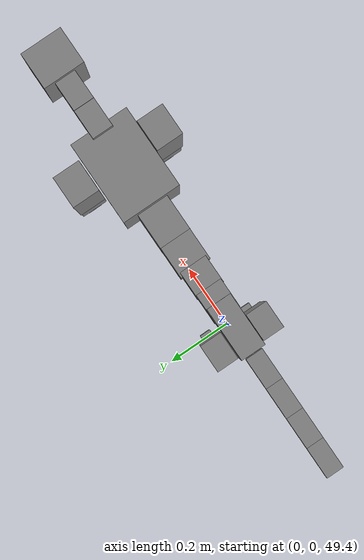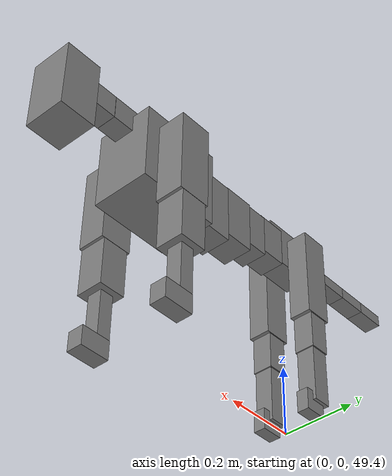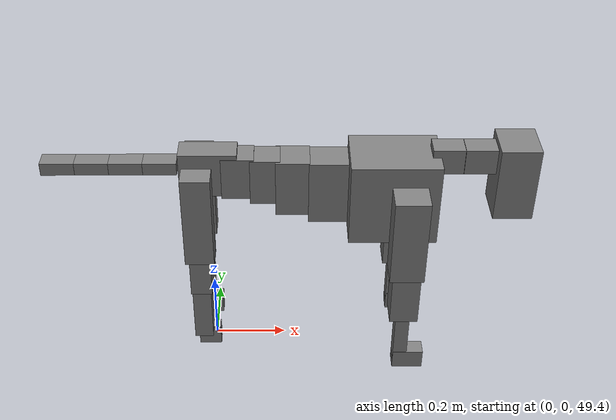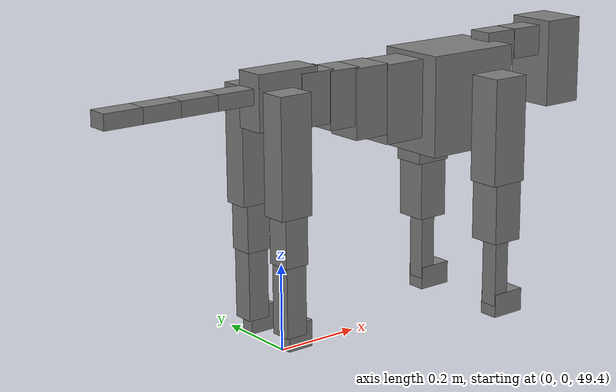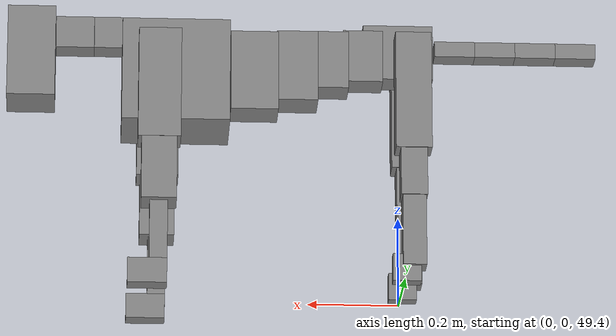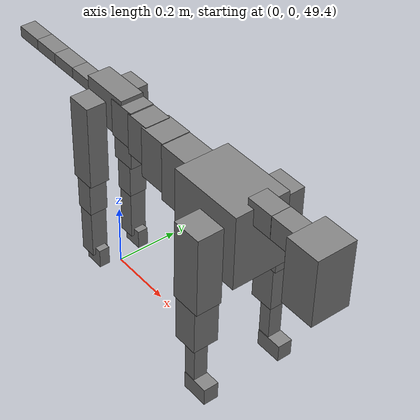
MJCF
<mujoco model="dog">

    <default>
        <joint armature="0.02" stiffness="1" damping="0.2" limited="true"/>
        <geom condim="3" friction="1 0.05 0.05" margin="0.01"/>
        <motor ctrllimited="true" ctrlrange="-1.0 1.0" forcelimited="true" gear="50"/>
    </default>

    <compiler inertiafromgeom="true" angle="radian"/>

    <option timestep="0.016" iterations="50" tolerance="1e-10" solver="Newton" jacobian="dense" cone="pyramidal"/>

    <size nconmax="20000" njmax="60000" nstack="5000000"/>
    <visual>
        <map force="0.1" zfar="30"/>
        <rgba haze="0.15 0.25 0.35 1"/>
        <quality shadowsize="2048"/>
        <global offwidth="800" offheight="800"/>
    </visual>

    <asset>
        <texture type="skybox" builtin="gradient" rgb1="0.3 0.5 0.7" rgb2="0 0 0" width="512" height="512"/>
        <texture name="texplane" type="2d" builtin="checker" rgb1=".2 .3 .4" rgb2=".1 0.15 0.2" width="512" height="512"
                 mark="cross" markrgb=".8 .8 .8"/>
        <texture name="texgeom" type="cube" builtin="flat" mark="cross" width="127" height="1278" rgb1="0.8 0.6 0.4"
                 rgb2="0.8 0.6 0.4" markrgb="1 1 1" random="0.01"/>

        <material name="matplane" reflectance="0.3" texture="texplane" texrepeat="1 1" texuniform="true"/>
        <material name="matgeom" texture="texgeom" texuniform="true" rgba="0.8 0.6 .4 1"/>
    </asset>

    <worldbody>
        <geom name="floor" pos="0 0 0" size="0 0 .25" type="plane" material="matplane" condim="3"/>

        <light directional="false" diffuse=".2 .2 .2" specular="0 0 0" pos="0 0 5" dir="0 0 -1" castshadow="false"/>
        <light mode="targetbodycom" target="torso" directional="false" diffuse=".8 .8 .8" specular="0.3 0.3 0.3"
               pos="0 0 4.0" dir="0 0 -1"/>

        <body name="root" pos="0 0 50">
            <freejoint name="root_1"/>
            <geom type="box" pos="0 0 -0.02" size="0.0774  0.0358  0.063" density="2030"/>

            <body name="spine1" pos="0.054 0 0">
                <joint name="spine1_y" axis="0 1 0" range="0 0.7" limited="true"/>
                <geom type="box" pos="0.02375 0 -0.03" size="0.04375  0.0375  0.05985" density="2030"/>

                <body name="spine2" pos="0.0612 0 0">
                    <joint name="spine2_y" axis="0 1 0" range="-0.15 0.15" limited="true"/>
                    <geom type="box" pos="0.03555  0  -0.04" size="0.04055  0.039  0.06615" density="2030"/>

                    <body name="spine3" pos="0.0730 0 0">
                        <joint name="spine3_y" axis="0 1 0" range="-0.15 0.15" limited="true"/>
                        <geom type="box" pos="0.03555  0  -0.057" size="0.04555  0.0445  0.081" density="2030"/>

                        <body name="spine4" pos="0.0780 0 0">
                            <joint name="spine4_y" axis="0 1 0" range="-0.15 0.15" limited="true"/>
                            <geom type="box" pos="0.05265  0  -0.07" size="0.05265  0.045  0.09135" density="2030"/>

                            <body name="torso" pos="0.1082 0 0">
                                <joint name="torso_y" axis="0 1 0" range="-0.15 0.15" limited="true"/>
                                <geom type="box" pos="0.11925  0  -0.085" size="0.11925  0.085  0.11745"
                                      density="2030"/>

                                <body name="neck1" pos="0.2160  0   0.0180">
                                    <joint name="neck1_y" axis="0 1 0" range="-1.2  -1" limited="true"/>
                                    <geom type="box" pos="0.0423  0  0" size="0.0423  0.03  0.036" density="2325"/>

                                    <body name="neck2" pos="0.0853  0  0">
                                        <joint name="neck2_y" axis="0 1 0" range="0.1  0" limited="true"/>
                                        <geom type="box" pos="0.0423  0  0" size="0.0423  0.03  0.036" density="2325"/>

                                        <body name="head" pos="0.0853  0  0">
                                            <joint name="head_y" axis="0 1 0" range="-0.3  -0.2" limited="true"/>
                                            <geom type="box" pos="0.0531  0  -0.055" size="0.0531  0.06  0.1044"
                                                  density="4030"/>

                                        </body>
                                    </body>
                                </body>

                                <body name="front_shoulder" pos="0.156  0   -0.0480">
                                    <joint name="front_shoulder_y" axis="0 1 0" range="-1 1.5" limited="true"/>
                                    <geom type="box" pos="0 0.13 -0.0990" size="0.0466  0.0399  0.1256" density="1158"/>
                                    <geom type="box" pos="0 -0.13 -0.0990" size="0.0466  0.0399  0.1256"
                                          density="1158"/>

                                    <body name="front_elbow" pos="0  0  -0.1979">
                                        <joint name="front_elbow_y" axis="0 1 0" range="-2 0" limited="true"/>
                                        <geom type="box" pos="0 0.13 -0.0839" size="0.0386  0.0394  0.0839"
                                              density="1081"/>
                                        <geom type="box" pos="0 -0.13 -0.0839" size="0.0386  0.0394  0.0839"
                                              density="1081"/>

                                        <body name="front_wrist" pos="0  0  -0.1678">
                                            <joint name="front_wrist_y" axis="0 1 0" range="-0.2 0" limited="true"/>
                                            <geom type="box" pos="0 0.13 -0.0736" size="0.0196  0.0218  0.0867"
                                                  density="1664"/>
                                            <geom type="box" pos="0 -0.13 -0.0736" size="0.0196  0.0218  0.0867"
                                                  density="1664"/>

                                            <body name="front_finger_end" pos="0  0  -0.1471">
                                                <joint name="front_finger_y" axis="0 1 0" range="-0.4 1"
                                                       limited="true"/>
                                                <geom type="box" pos="0.0233  0.13  -0.0128"
                                                      size="0.0427  0.0233  0.0278" density="1515"/>
                                                <geom type="box" pos="0.0233  -0.13  -0.0128"
                                                      size="0.0427  0.0233  0.0278" density="1515"/>

                                            </body>

                                        </body>
                                    </body>
                                </body>

                            </body>
                        </body>
                    </body>
                </body>
            </body>

            <body name="back_hip" pos="-0.03 0 -0.018">
                <joint name="back_hip_y" axis="0 1 0" range="-1.5 0.3" limited="true"/>
                <geom type="box" pos="0 0.07 -0.1119" size="0.0397  0.0312  0.1347" density="1154"/>
                <geom type="box" pos="0 -0.07 -0.1119" size="0.0397  0.0312  0.1347" density="1154"/>

                <body name="back_knee" pos="0  0  -0.2237">
                    <joint name="back_knee_y" axis="0 1 0" range="0 2.8" limited="true"/>
                    <geom type="box" pos="0 0.07 -0.0579" size="0.0291  0.0287  0.0734" density="1227"/>
                    <geom type="box" pos="0 -0.07 -0.0579" size="0.0291  0.0287  0.0734" density="1227"/>

                    <body name="back_ankle" pos="0  0  -0.1158">
                        <joint name="back_ankle_y" axis="0 1 0" range="-2.2 0" limited="true"/>
                        <geom type="box" pos="0 0.07 -0.0821" size="0.0258  0.0258  0.0934" density="1284"/>
                        <geom type="box" pos="0 -0.07 -0.0821" size="0.0258  0.0258  0.0934" density="1284"/>

                        <body name="back_toe_end" pos="0  0  -0.1643">
                            <joint name="back_toe_y" axis="0 1 0" range="-0.4 1" limited="true"/>
                            <geom type="box" pos="0.0168  0.07  -0.0156" size="0.0309  0.0168  0.0306" density="1515"/>
                            <geom type="box" pos="0.0168  -0.07  -0.0156" size="0.0309  0.0168  0.0306" density="1515"/>

                        </body>
                    </body>
                </body>
            </body>

            <body name="tail1" pos="-0.074 0 -0.006">
                <joint name="tail1_y" axis="0 1 0" range="-0.2 0.2" limited="true"/>
                <geom type="box" pos="-0.0536  0  0" size="0.045  0.025  0.0175" density="1587"/>

                <body name="tail2" pos="-0.09 0 0">
                    <joint name="tail2_y" axis="0 1 0" range="-0.2 0.2" limited="true"/>
                    <geom type="box" pos="-0.0536  0  0" size="0.045  0.025  0.0175" density="1587"/>

                    <body name="tail3" pos="-0.09 0 0">
                        <joint name="tail3_y" axis="0 1 0" range="-0.2 0.2" limited="true"/>
                        <geom type="box" pos="-0.0536  0  0" size="0.045  0.025  0.0175" density="1587"/>

                        <body name="tail4" pos="-0.09 0 0">
                            <joint name="tail4_y" axis="0 1 0" range="-0.2 0.2" limited="true"/>
                            <geom type="box" pos="-0.0536  0  0" size="0.045  0.025  0.0175" density="1587"/>

                        </body>
                    </body>
                </body>
            </body>
        </body>
    </worldbody>

    <actuator>
        <motor joint="spine1_y" forcerange="-150 150     "/>
        <motor joint="spine2_y" forcerange="-150 150     "/>
        <motor joint="spine3_y" forcerange="-150 150     "/>
        <motor joint="spine4_y" forcerange="-150 150     "/>
        <motor joint="torso_y" forcerange="-150 150     "/>
        <motor joint="neck1_y" forcerange="-100 100       "/>
        <motor joint="neck2_y" forcerange="-100 100       "/>
        <motor joint="head_y" forcerange="-150 150       "/>
        <motor joint="front_shoulder_y" forcerange="-196.72 169.05"/>
        <motor joint="front_elbow_y" forcerange="-192.27 194.48"/>
        <motor joint="front_wrist_y" forcerange="-103.48 71.15"/>
        <motor joint="front_finger_y" forcerange="-45.68 38.57"/>
        <motor joint="back_hip_y" forcerange="-375.03 240.55"/>
        <motor joint="back_knee_y" forcerange="-397.04 220.85"/>
        <motor joint="back_angle_y" forcerange="-240.84 71.16"/>
        <motor joint="back_toe_y" forcerange="-21.69 33.08"/>
        <motor joint="tail1_y" forcerange="-50 50     "/>
        <motor joint="tail2_y" forcerange="-50 50     "/>
        <motor joint="tail3_y" forcerange="-50 50     "/>
        <motor joint="tail4_y" forcerange="-50 50     "/>
    </actuator>
</mujoco>
